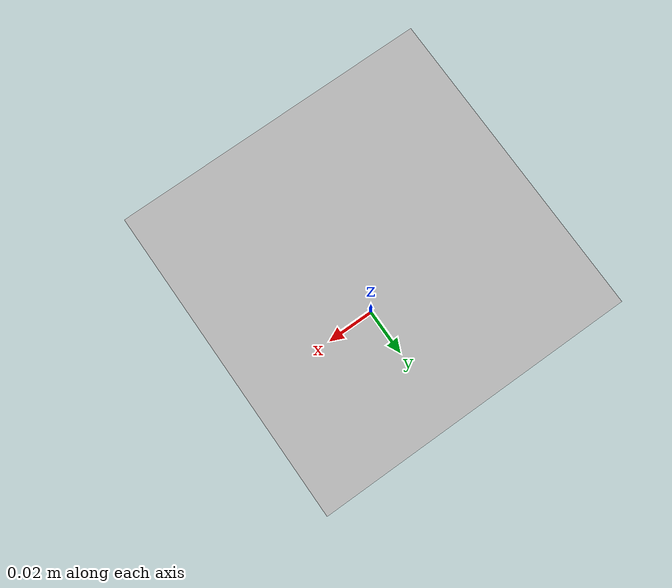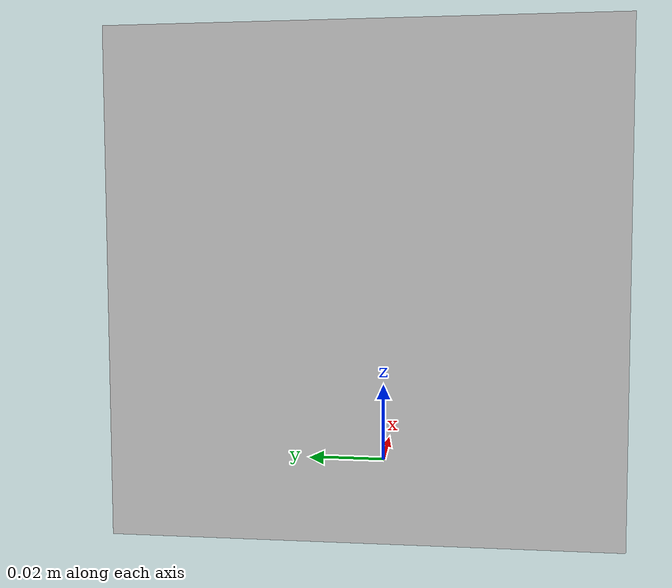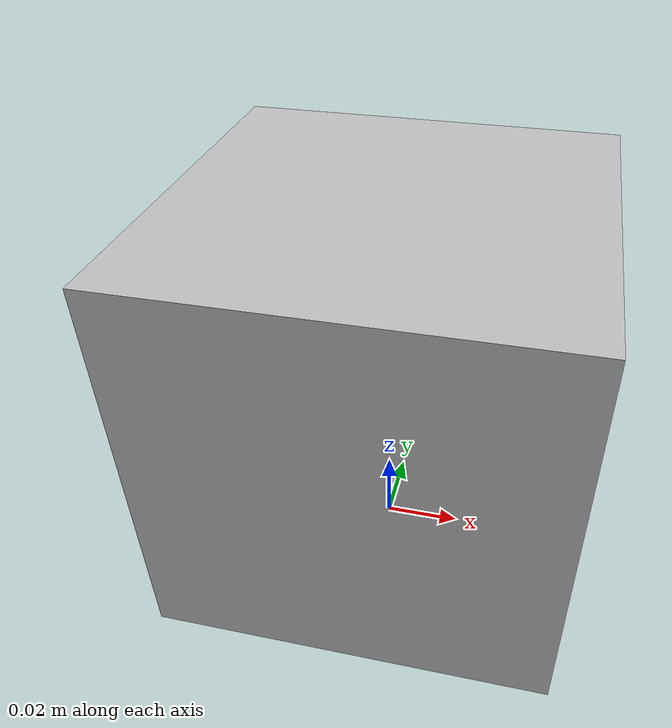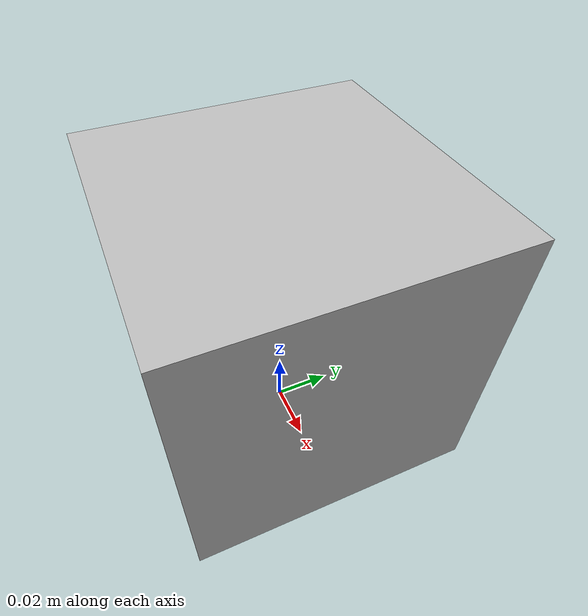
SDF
<?xml version="1.0" ?>
<sdf version="1.5">
  <model name="camera">
    <pose>0 0 0.05 0 0 0</pose>
    <link name="link">
      <pose frame=''>0 0 0 0 0 -3.14</pose>
      <inertial>
        <mass>0.1</mass>
        <inertia>
          <ixx>0.000166667</ixx>
          <iyy>0.000166667</iyy>
          <izz>0.000166667</izz>
        </inertia>
      </inertial>
      <collision name="collision">
        <geometry>
          <box>
            <size>0.1 0.1 0.1</size>
          </box>
        </geometry>
      </collision>
      <visual name="visual">
        <geometry>
          <box>
            <size>0.1 0.1 0.1</size>
          </box>
        </geometry>
      </visual>
      <sensor name="camera" type="camera">
        <camera>
          <horizontal_fov>1.047</horizontal_fov>
          <image>
            <width>320</width>
            <height>240</height>
          </image>
          <clip>
            <near>0.1</near>
            <far>100</far>
          </clip>
        </camera>
        <always_on>1</always_on>
        <update_rate>30</update_rate>
        <visualize>true</visualize>

        <plugin name="camera_controller" filename="libgazebo_ros_camera.so">
        </plugin>
      </sensor>
    </link>
  </model>
</sdf>
